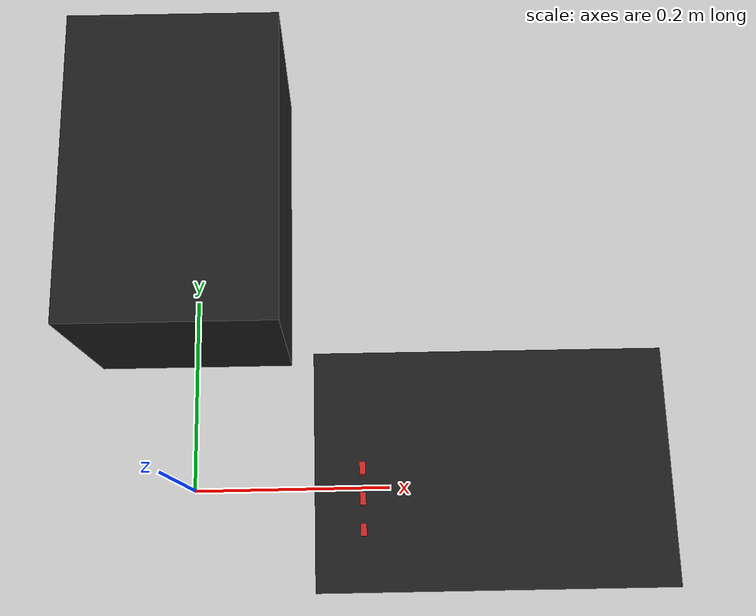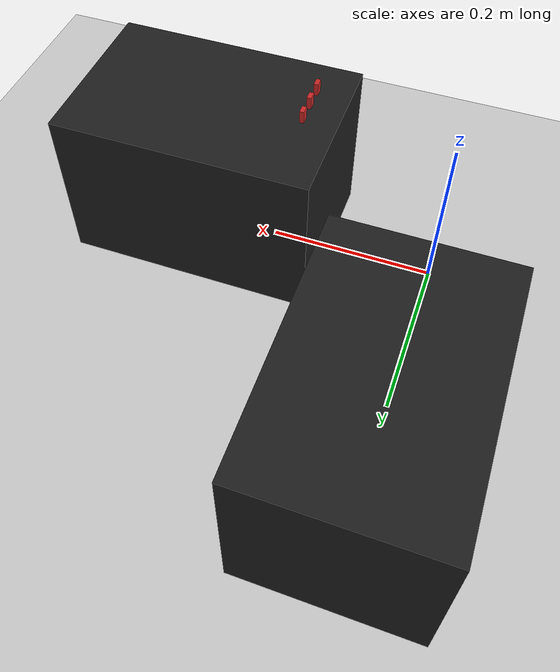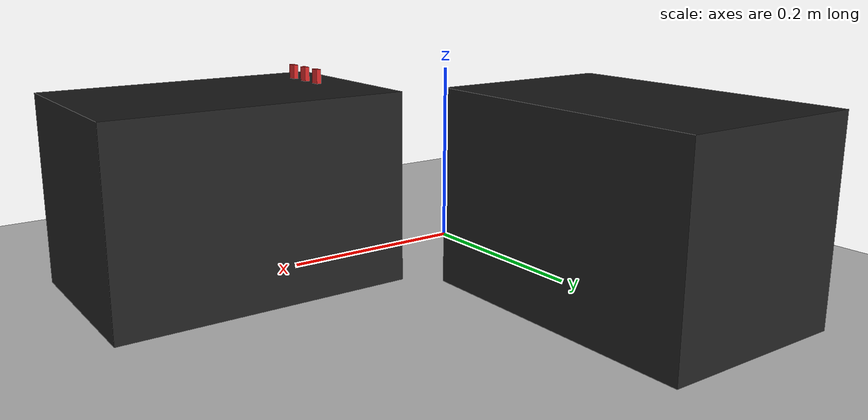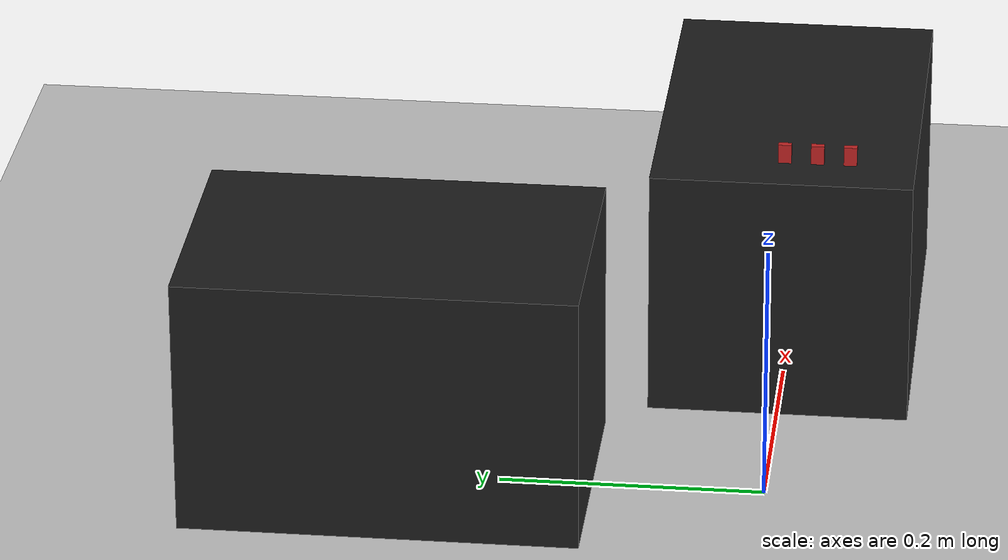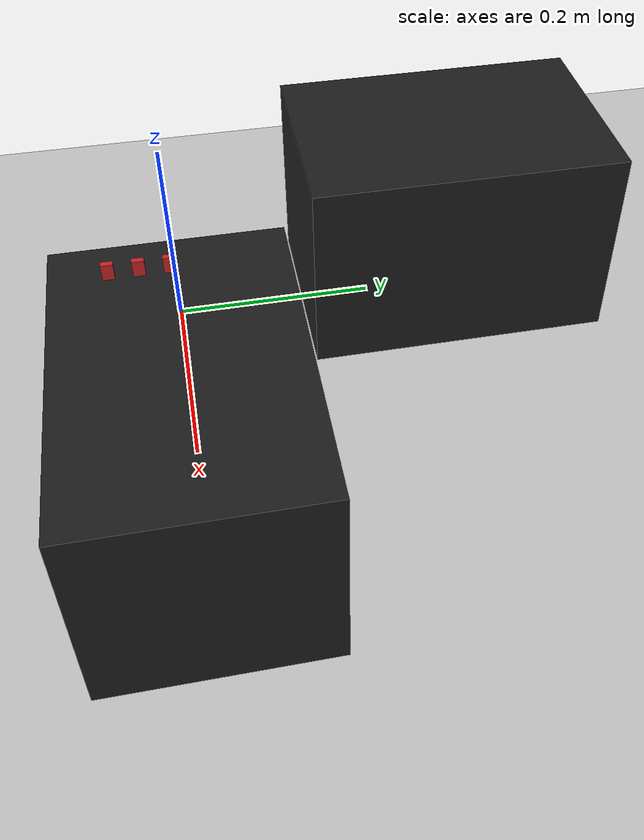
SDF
<sdf version="1.7">
 <world name="default">
  <light name="sun" type="directional">
   <pose>0 0 10 0 -0 0</pose>
   <diffuse>0.8 0.8 0.8 1</diffuse>
   <specular>0.2 0.2 0.2 1</specular>
   <attenuation>
    <range>1000</range>
    <constant>0.9</constant>
    <linear>0.01</linear>
    <quadratic>0.001</quadratic>
   </attenuation>
   <direction>-0.5 0.1 -0.9</direction>
   <spot><inner_angle>0</inner_angle><outer_angle>0</outer_angle><falloff>0</falloff></spot>
  </light>
  <model name="ground_plane">
   <static>1</static>
   <link name="link">
    <collision name="collision">
     <geometry><plane><normal>0 0 1</normal><size>100 100</size></plane></geometry>
     <surface>
      <contact><collide_bitmask>65535</collide_bitmask></contact>
      <friction><ode><mu>100</mu><mu2>50</mu2></ode></friction>
     </surface>
    </collision>
    <visual name="visual">
     <cast_shadows>0</cast_shadows>
     <geometry><plane><normal>0 0 1</normal><size>100 100</size></plane></geometry>
     <material>
      <script><uri>file://media/materials/scripts/gazebo.material</uri><name>Gazebo/Grey</name></script>
     </material>
    </visual>
   </link>
  </model>
  <gravity>0 0 -9.8</gravity>
  <magnetic_field>6e-06 2.3e-05 -4.2e-05</magnetic_field>
  <atmosphere type="adiabatic"/>
  <physics type="ode">
   <max_step_size>0.001</max_step_size>
   <real_time_factor>1</real_time_factor>
   <real_time_update_rate>1000</real_time_update_rate>
  </physics>
  <scene><ambient>0.4 0.4 0.4 1</ambient><background>0.7 0.7 0.7 1</background><shadows>1</shadows></scene>
  <spherical_coordinates>
   <surface_model>EARTH_WGS84</surface_model>
   <latitude_deg>0</latitude_deg>
   <longitude_deg>0</longitude_deg>
   <elevation>0</elevation>
   <heading_deg>0</heading_deg>
  </spherical_coordinates>
  <model name="table">
   <link name="link_0">
    <inertial>
     <mass>10.02</mass>
     <inertia><ixx>0.10855</ixx><ixy>0</ixy><ixz>0</ixz><iyy>0.0668</iyy><iyz>0</iyz><izz>0.10855</izz></inertia>
     <pose>0 0 0 0 -0 1.57</pose>
    </inertial>
    <visual name="visual">
     <geometry><box><size>0.2 0.3 0.2</size></box></geometry>
     <material>
      <lighting>1</lighting>
      <script><uri>file://media/materials/scripts/gazebo.material</uri><name>Gazebo/Black</name></script>
      <shader type="pixel"><normal_map>__default__</normal_map></shader>
      <ambient>0.3 0.3 0.3 1</ambient>
      <diffuse>0.7 0.7 0.7 1</diffuse>
      <specular>0.01 0.01 0.01 1</specular>
      <emissive>0 0 0 1</emissive>
     </material>
    </visual>
    <collision name="collision">
     <geometry><box><size>0.2 0.3 0.2</size></box></geometry>
     <surface>
      <friction>
       <ode><mu>1</mu><mu2>1</mu2><fdir1>0 0 0</fdir1><slip1>0</slip1><slip2>0</slip2></ode>
       <torsional>
        <coefficient>1</coefficient>
        <patch_radius>0</patch_radius>
        <surface_radius>0</surface_radius>
        <use_patch_radius>1</use_patch_radius>
        <ode><slip>0</slip></ode>
       </torsional>
      </friction>
      <bounce><restitution_coefficient>0</restitution_coefficient><threshold>1e+06</threshold></bounce>
      <contact>
       <collide_without_contact>0</collide_without_contact>
       <collide_without_contact_bitmask>1</collide_without_contact_bitmask>
       <collide_bitmask>1</collide_bitmask>
       <ode>
        <soft_cfm>0</soft_cfm>
        <soft_erp>0.2</soft_erp>
        <kp>1e+13</kp>
        <kd>1</kd>
        <max_vel>0.01</max_vel>
        <min_depth>0</min_depth>
       </ode>
       <bullet>
        <split_impulse>1</split_impulse>
        <split_impulse_penetration_threshold>-0.01</split_impulse_penetration_threshold>
        <soft_cfm>0</soft_cfm>
        <soft_erp>0.2</soft_erp>
        <kp>1e+13</kp>
        <kd>1</kd>
       </bullet>
      </contact>
     </surface>
    </collision>
   </link>
   <static>0</static>
   <pose>0.280003 0 0.0951 -3e-06 0 1.57</pose>
  </model>
  <model name="cube">
   <link name="link_1">
    <inertial>
     <mass>5.625e-05</mass>
     <inertia><ixx>0</ixx><ixy>0</ixy><ixz>0</ixz><iyy>0</iyy><iyz>0</iyz><izz>0</izz></inertia>
    </inertial>
    <visual name="visual">
     <geometry><box><size>0.005 0.01 0.015</size></box></geometry>
     <material>
      <lighting>1</lighting>
      <script><uri>file://media/materials/scripts/gazebo.material</uri><name>Gazebo/Red</name></script>
      <shader type="pixel"><normal_map>__default__</normal_map></shader>
      <ambient>0.3 0.3 0.3 1</ambient>
      <diffuse>0.7 0.7 0.7 1</diffuse>
      <specular>0.01 0.01 0.01 1</specular>
      <emissive>0 0 0 1</emissive>
     </material>
    </visual>
    <collision name="collision">
     <geometry><box><size>0.005 0.01 0.015</size></box></geometry>
     <surface>
      <friction>
       <ode><mu>1</mu><mu2>1</mu2><fdir1>0 0 0</fdir1><slip1>0</slip1><slip2>0</slip2></ode>
       <torsional>
        <coefficient>1</coefficient>
        <patch_radius>0</patch_radius>
        <surface_radius>0</surface_radius>
        <use_patch_radius>1</use_patch_radius>
        <ode><slip>0</slip></ode>
       </torsional>
      </friction>
      <bounce><restitution_coefficient>0</restitution_coefficient><threshold>1e+06</threshold></bounce>
      <contact>
       <collide_without_contact>0</collide_without_contact>
       <collide_without_contact_bitmask>1</collide_without_contact_bitmask>
       <collide_bitmask>1</collide_bitmask>
       <ode>
        <soft_cfm>0</soft_cfm>
        <soft_erp>0.2</soft_erp>
        <kp>1e+13</kp>
        <kd>1</kd>
        <max_vel>0.01</max_vel>
        <min_depth>0</min_depth>
       </ode>
       <bullet>
        <split_impulse>1</split_impulse>
        <split_impulse_penetration_threshold>-0.01</split_impulse_penetration_threshold>
        <soft_cfm>0</soft_cfm>
        <soft_erp>0.2</soft_erp>
        <kp>1e+13</kp>
        <kd>1</kd>
       </bullet>
      </contact>
     </surface>
    </collision>
   </link>
   <static>0</static>
   <pose>0.169999 -0.025 0.20259 -1e-06 2.3e-05 0</pose>
  </model>
  <model name="cube_clone">
   <link name="link_1">
    <inertial>
     <mass>5.625e-05</mass>
     <inertia><ixx>0</ixx><ixy>0</ixy><ixz>0</ixz><iyy>0</iyy><iyz>0</iyz><izz>0</izz></inertia>
    </inertial>
    <visual name="visual">
     <geometry><box><size>0.005 0.01 0.015</size></box></geometry>
     <material>
      <lighting>1</lighting>
      <script><uri>file://media/materials/scripts/gazebo.material</uri><name>Gazebo/Red</name></script>
      <shader type="pixel"><normal_map>__default__</normal_map></shader>
      <ambient>0.3 0.3 0.3 1</ambient>
      <diffuse>0.7 0.7 0.7 1</diffuse>
      <specular>0.01 0.01 0.01 1</specular>
      <emissive>0 0 0 1</emissive>
     </material>
    </visual>
    <collision name="collision">
     <geometry><box><size>0.005 0.01 0.015</size></box></geometry>
     <surface>
      <friction>
       <ode><mu>1</mu><mu2>1</mu2><fdir1>0 0 0</fdir1><slip1>0</slip1><slip2>0</slip2></ode>
       <torsional>
        <coefficient>1</coefficient>
        <patch_radius>0</patch_radius>
        <surface_radius>0</surface_radius>
        <use_patch_radius>1</use_patch_radius>
        <ode><slip>0</slip></ode>
       </torsional>
      </friction>
      <bounce><restitution_coefficient>0</restitution_coefficient><threshold>1e+06</threshold></bounce>
      <contact>
       <collide_without_contact>0</collide_without_contact>
       <collide_without_contact_bitmask>1</collide_without_contact_bitmask>
       <collide_bitmask>1</collide_bitmask>
       <ode>
        <soft_cfm>0</soft_cfm>
        <soft_erp>0.2</soft_erp>
        <kp>1e+13</kp>
        <kd>1</kd>
        <max_vel>0.01</max_vel>
        <min_depth>0</min_depth>
       </ode>
       <bullet>
        <split_impulse>1</split_impulse>
        <split_impulse_penetration_threshold>-0.01</split_impulse_penetration_threshold>
        <soft_cfm>0</soft_cfm>
        <soft_erp>0.2</soft_erp>
        <kp>1e+13</kp>
        <kd>1</kd>
       </bullet>
      </contact>
     </surface>
    </collision>
   </link>
   <static>0</static>
   <pose>0.169999 -0.05 0.20259 -1e-06 2.4e-05 0</pose>
  </model>
  <model name="cube_clone_0">
   <link name="link_1">
    <inertial>
     <mass>5.625e-05</mass>
     <inertia><ixx>0</ixx><ixy>0</ixy><ixz>0</ixz><iyy>0</iyy><iyz>0</iyz><izz>0</izz></inertia>
    </inertial>
    <visual name="visual">
     <geometry><box><size>0.005 0.01 0.015</size></box></geometry>
     <material>
      <lighting>1</lighting>
      <script><uri>file://media/materials/scripts/gazebo.material</uri><name>Gazebo/Red</name></script>
      <shader type="pixel"><normal_map>__default__</normal_map></shader>
      <ambient>0.3 0.3 0.3 1</ambient>
      <diffuse>0.7 0.7 0.7 1</diffuse>
      <specular>0.01 0.01 0.01 1</specular>
      <emissive>0 0 0 1</emissive>
     </material>
    </visual>
    <collision name="collision">
     <geometry><box><size>0.005 0.01 0.015</size></box></geometry>
     <surface>
      <friction>
       <ode><mu>1</mu><mu2>1</mu2><fdir1>0 0 0</fdir1><slip1>0</slip1><slip2>0</slip2></ode>
       <torsional>
        <coefficient>1</coefficient>
        <patch_radius>0</patch_radius>
        <surface_radius>0</surface_radius>
        <use_patch_radius>1</use_patch_radius>
        <ode><slip>0</slip></ode>
       </torsional>
      </friction>
      <bounce><restitution_coefficient>0</restitution_coefficient><threshold>1e+06</threshold></bounce>
      <contact>
       <collide_without_contact>0</collide_without_contact>
       <collide_without_contact_bitmask>1</collide_without_contact_bitmask>
       <collide_bitmask>1</collide_bitmask>
       <ode>
        <soft_cfm>0</soft_cfm>
        <soft_erp>0.2</soft_erp>
        <kp>1e+13</kp>
        <kd>1</kd>
        <max_vel>0.01</max_vel>
        <min_depth>0</min_depth>
       </ode>
       <bullet>
        <split_impulse>1</split_impulse>
        <split_impulse_penetration_threshold>-0.01</split_impulse_penetration_threshold>
        <soft_cfm>0</soft_cfm>
        <soft_erp>0.2</soft_erp>
        <kp>1e+13</kp>
        <kd>1</kd>
       </bullet>
      </contact>
     </surface>
    </collision>
   </link>
   <static>0</static>
   <pose>0.17 -0 0.20259 1e-06 2.3e-05 0</pose>
  </model>
  <model name="table_clone">
   <link name="link_0">
    <inertial>
     <mass>10.02</mass>
     <inertia><ixx>0.10855</ixx><ixy>0</ixy><ixz>0</ixz><iyy>0.0668</iyy><iyz>0</iyz><izz>0.10855</izz></inertia>
     <pose>0 0 0 0 -0 1.57</pose>
    </inertial>
    <visual name="visual">
     <geometry><box><size>0.2 0.3 0.2</size></box></geometry>
     <material>
      <lighting>1</lighting>
      <script><uri>file://media/materials/scripts/gazebo.material</uri><name>Gazebo/Black</name></script>
      <shader type="pixel"><normal_map>__default__</normal_map></shader>
      <ambient>0.3 0.3 0.3 1</ambient>
      <diffuse>0.7 0.7 0.7 1</diffuse>
      <specular>0.01 0.01 0.01 1</specular>
      <emissive>0 0 0 1</emissive>
     </material>
    </visual>
    <collision name="collision">
     <geometry><box><size>0.2 0.3 0.2</size></box></geometry>
     <surface>
      <friction>
       <ode><mu>1</mu><mu2>1</mu2><fdir1>0 0 0</fdir1><slip1>0</slip1><slip2>0</slip2></ode>
       <torsional>
        <coefficient>1</coefficient>
        <patch_radius>0</patch_radius>
        <surface_radius>0</surface_radius>
        <use_patch_radius>1</use_patch_radius>
        <ode><slip>0</slip></ode>
       </torsional>
      </friction>
      <bounce><restitution_coefficient>0</restitution_coefficient><threshold>1e+06</threshold></bounce>
      <contact>
       <collide_without_contact>0</collide_without_contact>
       <collide_without_contact_bitmask>1</collide_without_contact_bitmask>
       <collide_bitmask>1</collide_bitmask>
       <ode>
        <soft_cfm>0</soft_cfm>
        <soft_erp>0.2</soft_erp>
        <kp>1e+13</kp>
        <kd>1</kd>
        <max_vel>0.01</max_vel>
        <min_depth>0</min_depth>
       </ode>
       <bullet>
        <split_impulse>1</split_impulse>
        <split_impulse_penetration_threshold>-0.01</split_impulse_penetration_threshold>
        <soft_cfm>0</soft_cfm>
        <soft_erp>0.2</soft_erp>
        <kp>1e+13</kp>
        <kd>1</kd>
       </bullet>
      </contact>
     </surface>
    </collision>
   </link>
   <static>0</static>
   <pose>-0 0.28 0.1 0 -0 0</pose>
  </model>
  <plugin name="ros_link_attacher_plugin" filename="libgazebo_ros_link_attacher.so"/>
 </world>
</sdf>
